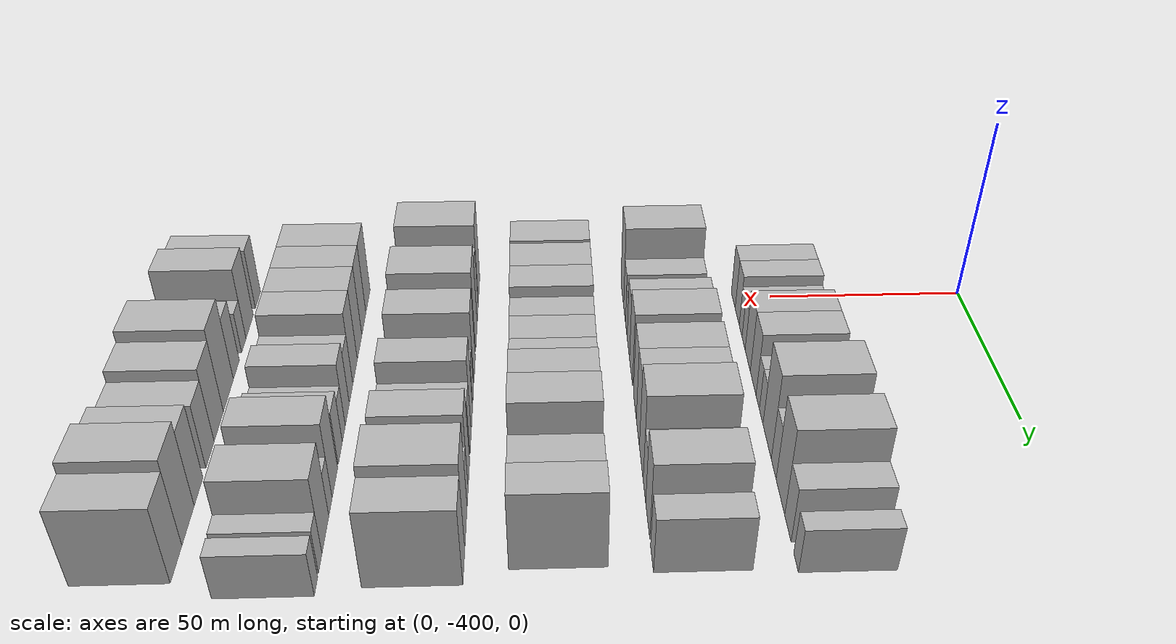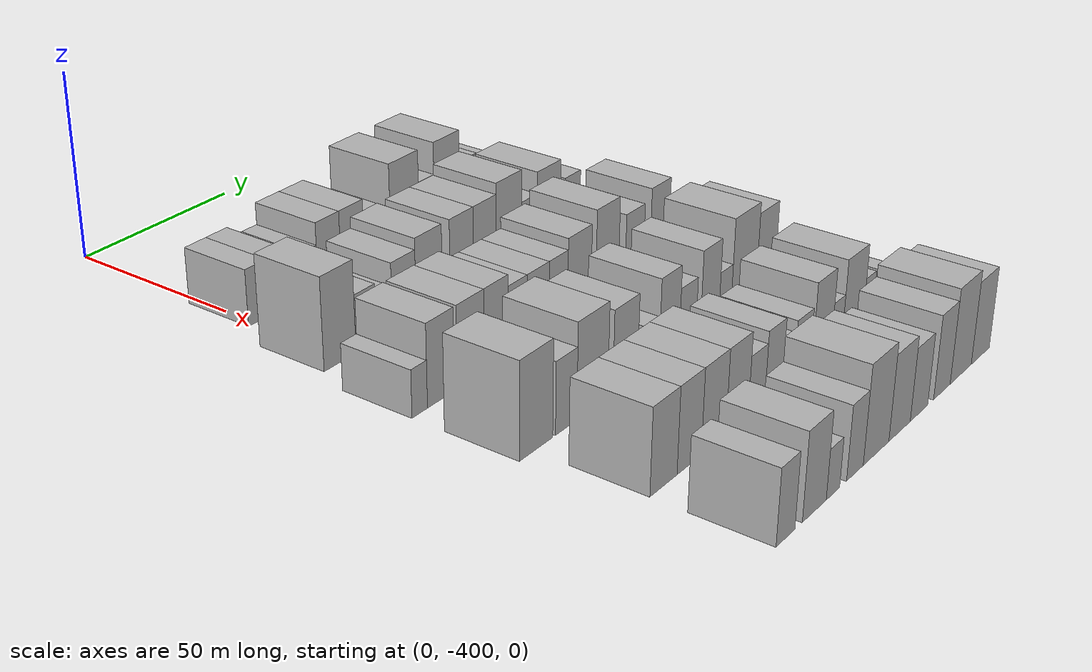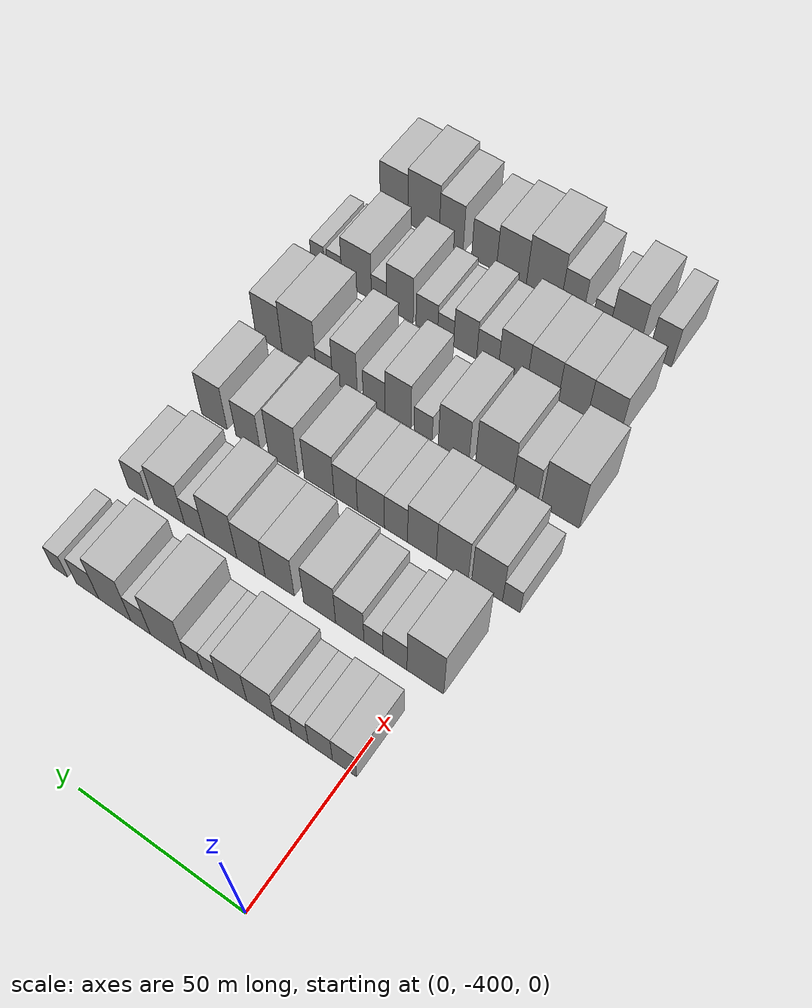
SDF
<sdf version="1.6">
 <world name="default">
  <model name="building_13">
   <static>1</static>
   <pose>50.0000 -398.7498 0 0.000000 0.000000 0.000000</pose>
   <link name="link">
    <pose>0 0 7.50 0 0 0</pose>
    <collision name="collision"><geometry><box><size>20.0000 7.1554 15.0000</size></box></geometry></collision>
    <visual name="visual">
     <cast_shadows>0</cast_shadows>
     <geometry><box><size>20.0000 7.1554 15.0000</size></box></geometry>
     <material>
      <script>
       <uri>model://HANNAS_wall/materials/scripts</uri>
       <uri>model://HANNAS_wall/materials/textures</uri>
       <name>vrc/HANNAS_wall</name>
      </script>
     </material>
    </visual>
   </link>
  </model>
  <model name="building_14">
   <static>1</static>
   <pose>50.0000 -391.5810 0 0.000000 0.000000 0.000000</pose>
   <link name="link">
    <pose>0 0 7.50 0 0 0</pose>
    <collision name="collision"><geometry><box><size>20.0000 7.1822 15.0000</size></box></geometry></collision>
    <visual name="visual">
     <cast_shadows>0</cast_shadows>
     <geometry><box><size>20.0000 7.1822 15.0000</size></box></geometry>
     <material>
      <script>
       <uri>model://HANNAS_wall/materials/scripts</uri>
       <uri>model://HANNAS_wall/materials/textures</uri>
       <name>vrc/HANNAS_wall</name>
      </script>
     </material>
    </visual>
   </link>
  </model>
  <model name="building_15">
   <static>1</static>
   <pose>50.0000 -385.5273 0 0.000000 0.000000 0.000000</pose>
   <link name="link">
    <pose>0 0 6.00 0 0 0</pose>
    <collision name="collision"><geometry><box><size>20.0000 4.9251 12.0000</size></box></geometry></collision>
    <visual name="visual">
     <cast_shadows>0</cast_shadows>
     <geometry><box><size>20.0000 4.9251 12.0000</size></box></geometry>
     <material>
      <script>
       <uri>model://HANNAS_wall/materials/scripts</uri>
       <uri>model://HANNAS_wall/materials/textures</uri>
       <name>vrc/HANNAS_wall</name>
      </script>
     </material>
    </visual>
   </link>
  </model>
  <model name="building_16">
   <static>1</static>
   <pose>50.0000 -380.4521 0 0.000000 0.000000 0.000000</pose>
   <link name="link">
    <pose>0 0 6.00 0 0 0</pose>
    <collision name="collision"><geometry><box><size>20.0000 5.2253 12.0000</size></box></geometry></collision>
    <visual name="visual">
     <cast_shadows>0</cast_shadows>
     <geometry><box><size>20.0000 5.2253 12.0000</size></box></geometry>
     <material>
      <script>
       <uri>model://HANNAS_wall/materials/scripts</uri>
       <uri>model://HANNAS_wall/materials/textures</uri>
       <name>vrc/HANNAS_wall</name>
      </script>
     </material>
    </visual>
   </link>
  </model>
  <model name="building_17">
   <static>1</static>
   <pose>50.0000 -373.5593 0 0.000000 0.000000 0.000000</pose>
   <link name="link">
    <pose>0 0 9.00 0 0 0</pose>
    <collision name="collision"><geometry><box><size>20.0000 8.5604 18.0000</size></box></geometry></collision>
    <visual name="visual">
     <cast_shadows>0</cast_shadows>
     <geometry><box><size>20.0000 8.5604 18.0000</size></box></geometry>
     <material>
      <script>
       <uri>model://HANNAS_wall/materials/scripts</uri>
       <uri>model://HANNAS_wall/materials/textures</uri>
       <name>vrc/HANNAS_wall</name>
      </script>
     </material>
    </visual>
   </link>
  </model>
  <model name="building_18">
   <static>1</static>
   <pose>50.0000 -364.8369 0 0.000000 0.000000 0.000000</pose>
   <link name="link">
    <pose>0 0 9.00 0 0 0</pose>
    <collision name="collision"><geometry><box><size>20.0000 8.8844 18.0000</size></box></geometry></collision>
    <visual name="visual">
     <cast_shadows>0</cast_shadows>
     <geometry><box><size>20.0000 8.8844 18.0000</size></box></geometry>
     <material>
      <script>
       <uri>model://HANNAS_wall/materials/scripts</uri>
       <uri>model://HANNAS_wall/materials/textures</uri>
       <name>vrc/HANNAS_wall</name>
      </script>
     </material>
    </visual>
   </link>
  </model>
  <model name="building_19">
   <static>1</static>
   <pose>50.0000 -357.9122 0 0.000000 0.000000 0.000000</pose>
   <link name="link">
    <pose>0 0 6.00 0 0 0</pose>
    <collision name="collision"><geometry><box><size>20.0000 4.9650 12.0000</size></box></geometry></collision>
    <visual name="visual">
     <cast_shadows>0</cast_shadows>
     <geometry><box><size>20.0000 4.9650 12.0000</size></box></geometry>
     <material>
      <script>
       <uri>model://HANNAS_wall/materials/scripts</uri>
       <uri>model://HANNAS_wall/materials/textures</uri>
       <name>vrc/HANNAS_wall</name>
      </script>
     </material>
    </visual>
   </link>
  </model>
  <model name="building_20">
   <static>1</static>
   <pose>50.0000 -352.7772 0 0.000000 0.000000 0.000000</pose>
   <link name="link">
    <pose>0 0 6.00 0 0 0</pose>
    <collision name="collision"><geometry><box><size>20.0000 5.3050 12.0000</size></box></geometry></collision>
    <visual name="visual">
     <cast_shadows>0</cast_shadows>
     <geometry><box><size>20.0000 5.3050 12.0000</size></box></geometry>
     <material>
      <script>
       <uri>model://HANNAS_wall/materials/scripts</uri>
       <uri>model://HANNAS_wall/materials/textures</uri>
       <name>vrc/HANNAS_wall</name>
      </script>
     </material>
    </visual>
   </link>
  </model>
  <model name="building_21">
   <static>1</static>
   <pose>50.0000 -344.3734 0 0.000000 0.000000 0.000000</pose>
   <link name="link">
    <pose>0 0 12.00 0 0 0</pose>
    <collision name="collision"><geometry><box><size>20.0000 11.5025 24.0000</size></box></geometry></collision>
    <visual name="visual">
     <cast_shadows>0</cast_shadows>
     <geometry><box><size>20.0000 11.5025 24.0000</size></box></geometry>
     <material>
      <script>
       <uri>model://HANNAS_wall/materials/scripts</uri>
       <uri>model://HANNAS_wall/materials/textures</uri>
       <name>vrc/HANNAS_wall</name>
      </script>
     </material>
    </visual>
   </link>
  </model>
  <model name="building_22">
   <static>1</static>
   <pose>50.0000 -335.4424 0 0.000000 0.000000 0.000000</pose>
   <link name="link">
    <pose>0 0 7.50 0 0 0</pose>
    <collision name="collision"><geometry><box><size>20.0000 6.3595 15.0000</size></box></geometry></collision>
    <visual name="visual">
     <cast_shadows>0</cast_shadows>
     <geometry><box><size>20.0000 6.3595 15.0000</size></box></geometry>
     <material>
      <script>
       <uri>model://HANNAS_wall/materials/scripts</uri>
       <uri>model://HANNAS_wall/materials/textures</uri>
       <name>vrc/HANNAS_wall</name>
      </script>
     </material>
    </visual>
   </link>
  </model>
  <model name="building_23">
   <static>1</static>
   <pose>50.0000 -326.9030 0 0.000000 0.000000 0.000000</pose>
   <link name="link">
    <pose>0 0 12.00 0 0 0</pose>
    <collision name="collision"><geometry><box><size>20.0000 10.7193 24.0000</size></box></geometry></collision>
    <visual name="visual">
     <cast_shadows>0</cast_shadows>
     <geometry><box><size>20.0000 10.7193 24.0000</size></box></geometry>
     <material>
      <script>
       <uri>model://HANNAS_wall/materials/scripts</uri>
       <uri>model://HANNAS_wall/materials/textures</uri>
       <name>vrc/HANNAS_wall</name>
      </script>
     </material>
    </visual>
   </link>
  </model>
  <model name="building_24">
   <static>1</static>
   <pose>50.0000 -317.8002 0 0.000000 0.000000 0.000000</pose>
   <link name="link">
    <pose>0 0 7.50 0 0 0</pose>
    <collision name="collision"><geometry><box><size>20.0000 7.4862 15.0000</size></box></geometry></collision>
    <visual name="visual">
     <cast_shadows>0</cast_shadows>
     <geometry><box><size>20.0000 7.4862 15.0000</size></box></geometry>
     <material>
      <script>
       <uri>model://HANNAS_wall/materials/scripts</uri>
       <uri>model://HANNAS_wall/materials/textures</uri>
       <name>vrc/HANNAS_wall</name>
      </script>
     </material>
    </visual>
   </link>
  </model>
  <model name="building_25">
   <static>1</static>
   <pose>50.0000 -308.4729 0 0.000000 0.000000 0.000000</pose>
   <link name="link">
    <pose>0 0 6.00 0 0 0</pose>
    <collision name="collision"><geometry><box><size>20.0000 5.1685 12.0000</size></box></geometry></collision>
    <visual name="visual">
     <cast_shadows>0</cast_shadows>
     <geometry><box><size>20.0000 5.1685 12.0000</size></box></geometry>
     <material>
      <script>
       <uri>model://HANNAS_wall/materials/scripts</uri>
       <uri>model://HANNAS_wall/materials/textures</uri>
       <name>vrc/HANNAS_wall</name>
      </script>
     </material>
    </visual>
   </link>
  </model>
  <model name="building_129">
   <static>1</static>
   <pose>79.0000 -402.3320 0 0.000000 0.000000 0.000000</pose>
   <link name="link">
    <pose>0 0 12.00 0 0 0</pose>
    <collision name="collision"><geometry><box><size>20.0000 10.9451 24.0000</size></box></geometry></collision>
    <visual name="visual">
     <cast_shadows>0</cast_shadows>
     <geometry><box><size>20.0000 10.9451 24.0000</size></box></geometry>
     <material>
      <script>
       <uri>model://HANNAS_wall/materials/scripts</uri>
       <uri>model://HANNAS_wall/materials/textures</uri>
       <name>vrc/HANNAS_wall</name>
      </script>
     </material>
    </visual>
   </link>
  </model>
  <model name="building_130">
   <static>1</static>
   <pose>79.0000 -393.2459 0 0.000000 0.000000 0.000000</pose>
   <link name="link">
    <pose>0 0 7.50 0 0 0</pose>
    <collision name="collision"><geometry><box><size>20.0000 7.2270 15.0000</size></box></geometry></collision>
    <visual name="visual">
     <cast_shadows>0</cast_shadows>
     <geometry><box><size>20.0000 7.2270 15.0000</size></box></geometry>
     <material>
      <script>
       <uri>model://HANNAS_wall/materials/scripts</uri>
       <uri>model://HANNAS_wall/materials/textures</uri>
       <name>vrc/HANNAS_wall</name>
      </script>
     </material>
    </visual>
   </link>
  </model>
  <model name="building_131">
   <static>1</static>
   <pose>79.0000 -386.7211 0 0.000000 0.000000 0.000000</pose>
   <link name="link">
    <pose>0 0 6.00 0 0 0</pose>
    <collision name="collision"><geometry><box><size>20.0000 5.8226 12.0000</size></box></geometry></collision>
    <visual name="visual">
     <cast_shadows>0</cast_shadows>
     <geometry><box><size>20.0000 5.8226 12.0000</size></box></geometry>
     <material>
      <script>
       <uri>model://HANNAS_wall/materials/scripts</uri>
       <uri>model://HANNAS_wall/materials/textures</uri>
       <name>vrc/HANNAS_wall</name>
      </script>
     </material>
    </visual>
   </link>
  </model>
  <model name="building_132">
   <static>1</static>
   <pose>79.0000 -379.4180 0 0.000000 0.000000 0.000000</pose>
   <link name="link">
    <pose>0 0 9.00 0 0 0</pose>
    <collision name="collision"><geometry><box><size>20.0000 8.7837 18.0000</size></box></geometry></collision>
    <visual name="visual">
     <cast_shadows>0</cast_shadows>
     <geometry><box><size>20.0000 8.7837 18.0000</size></box></geometry>
     <material>
      <script>
       <uri>model://HANNAS_wall/materials/scripts</uri>
       <uri>model://HANNAS_wall/materials/textures</uri>
       <name>vrc/HANNAS_wall</name>
      </script>
     </material>
    </visual>
   </link>
  </model>
  <model name="building_133">
   <static>1</static>
   <pose>79.0000 -370.0226 0 0.000000 0.000000 0.000000</pose>
   <link name="link">
    <pose>0 0 10.50 0 0 0</pose>
    <collision name="collision"><geometry><box><size>20.0000 10.0070 21.0000</size></box></geometry></collision>
    <visual name="visual">
     <cast_shadows>0</cast_shadows>
     <geometry><box><size>20.0000 10.0070 21.0000</size></box></geometry>
     <material>
      <script>
       <uri>model://HANNAS_wall/materials/scripts</uri>
       <uri>model://HANNAS_wall/materials/textures</uri>
       <name>vrc/HANNAS_wall</name>
      </script>
     </material>
    </visual>
   </link>
  </model>
  <model name="building_134">
   <static>1</static>
   <pose>79.0000 -357.3639 0 0.000000 0.000000 0.000000</pose>
   <link name="link">
    <pose>0 0 10.50 0 0 0</pose>
    <collision name="collision"><geometry><box><size>20.0000 9.3104 21.0000</size></box></geometry></collision>
    <visual name="visual">
     <cast_shadows>0</cast_shadows>
     <geometry><box><size>20.0000 9.3104 21.0000</size></box></geometry>
     <material>
      <script>
       <uri>model://HANNAS_wall/materials/scripts</uri>
       <uri>model://HANNAS_wall/materials/textures</uri>
       <name>vrc/HANNAS_wall</name>
      </script>
     </material>
    </visual>
   </link>
  </model>
  <model name="building_135">
   <static>1</static>
   <pose>79.0000 -348.0920 0 0.000000 0.000000 0.000000</pose>
   <link name="link">
    <pose>0 0 10.50 0 0 0</pose>
    <collision name="collision"><geometry><box><size>20.0000 9.2333 21.0000</size></box></geometry></collision>
    <visual name="visual">
     <cast_shadows>0</cast_shadows>
     <geometry><box><size>20.0000 9.2333 21.0000</size></box></geometry>
     <material>
      <script>
       <uri>model://HANNAS_wall/materials/scripts</uri>
       <uri>model://HANNAS_wall/materials/textures</uri>
       <name>vrc/HANNAS_wall</name>
      </script>
     </material>
    </visual>
   </link>
  </model>
  <model name="building_136">
   <static>1</static>
   <pose>79.0000 -338.1933 0 0.000000 0.000000 0.000000</pose>
   <link name="link">
    <pose>0 0 12.00 0 0 0</pose>
    <collision name="collision"><geometry><box><size>20.0000 10.5641 24.0000</size></box></geometry></collision>
    <visual name="visual">
     <cast_shadows>0</cast_shadows>
     <geometry><box><size>20.0000 10.5641 24.0000</size></box></geometry>
     <material>
      <script>
       <uri>model://HANNAS_wall/materials/scripts</uri>
       <uri>model://HANNAS_wall/materials/textures</uri>
       <name>vrc/HANNAS_wall</name>
      </script>
     </material>
    </visual>
   </link>
  </model>
  <model name="building_137">
   <static>1</static>
   <pose>79.0000 -329.5015 0 0.000000 0.000000 0.000000</pose>
   <link name="link">
    <pose>0 0 7.50 0 0 0</pose>
    <collision name="collision"><geometry><box><size>20.0000 6.8196 15.0000</size></box></geometry></collision>
    <visual name="visual">
     <cast_shadows>0</cast_shadows>
     <geometry><box><size>20.0000 6.8196 15.0000</size></box></geometry>
     <material>
      <script>
       <uri>model://HANNAS_wall/materials/scripts</uri>
       <uri>model://HANNAS_wall/materials/textures</uri>
       <name>vrc/HANNAS_wall</name>
      </script>
     </material>
    </visual>
   </link>
  </model>
  <model name="building_138">
   <static>1</static>
   <pose>79.0000 -320.9456 0 0.000000 0.000000 0.000000</pose>
   <link name="link">
    <pose>0 0 10.50 0 0 0</pose>
    <collision name="collision"><geometry><box><size>20.0000 10.2923 21.0000</size></box></geometry></collision>
    <visual name="visual">
     <cast_shadows>0</cast_shadows>
     <geometry><box><size>20.0000 10.2923 21.0000</size></box></geometry>
     <material>
      <script>
       <uri>model://HANNAS_wall/materials/scripts</uri>
       <uri>model://HANNAS_wall/materials/textures</uri>
       <name>vrc/HANNAS_wall</name>
      </script>
     </material>
    </visual>
   </link>
  </model>
  <model name="building_139">
   <static>1</static>
   <pose>79.0000 -310.3214 0 0.000000 0.000000 0.000000</pose>
   <link name="link">
    <pose>0 0 7.50 0 0 0</pose>
    <collision name="collision"><geometry><box><size>20.0000 6.9561 15.0000</size></box></geometry></collision>
    <visual name="visual">
     <cast_shadows>0</cast_shadows>
     <geometry><box><size>20.0000 6.9561 15.0000</size></box></geometry>
     <material>
      <script>
       <uri>model://HANNAS_wall/materials/scripts</uri>
       <uri>model://HANNAS_wall/materials/textures</uri>
       <name>vrc/HANNAS_wall</name>
      </script>
     </material>
    </visual>
   </link>
  </model>
  <model name="building_249">
   <static>1</static>
   <pose>108.0000 -409.0052 0 0.000000 0.000000 0.000000</pose>
   <link name="link">
    <pose>0 0 6.00 0 0 0</pose>
    <collision name="collision"><geometry><box><size>20.0000 5.3090 12.0000</size></box></geometry></collision>
    <visual name="visual">
     <cast_shadows>0</cast_shadows>
     <geometry><box><size>20.0000 5.3090 12.0000</size></box></geometry>
     <material>
      <script>
       <uri>model://HANNAS_wall/materials/scripts</uri>
       <uri>model://HANNAS_wall/materials/textures</uri>
       <name>vrc/HANNAS_wall</name>
      </script>
     </material>
    </visual>
   </link>
  </model>
  <model name="building_250">
   <static>1</static>
   <pose>108.0000 -401.6412 0 0.000000 0.000000 0.000000</pose>
   <link name="link">
    <pose>0 0 10.50 0 0 0</pose>
    <collision name="collision"><geometry><box><size>20.0000 9.4190 21.0000</size></box></geometry></collision>
    <visual name="visual">
     <cast_shadows>0</cast_shadows>
     <geometry><box><size>20.0000 9.4190 21.0000</size></box></geometry>
     <material>
      <script>
       <uri>model://HANNAS_wall/materials/scripts</uri>
       <uri>model://HANNAS_wall/materials/textures</uri>
       <name>vrc/HANNAS_wall</name>
      </script>
     </material>
    </visual>
   </link>
  </model>
  <model name="building_251">
   <static>1</static>
   <pose>108.0000 -391.0073 0 0.000000 0.000000 0.000000</pose>
   <link name="link">
    <pose>0 0 10.50 0 0 0</pose>
    <collision name="collision"><geometry><box><size>20.0000 9.8489 21.0000</size></box></geometry></collision>
    <visual name="visual">
     <cast_shadows>0</cast_shadows>
     <geometry><box><size>20.0000 9.8489 21.0000</size></box></geometry>
     <material>
      <script>
       <uri>model://HANNAS_wall/materials/scripts</uri>
       <uri>model://HANNAS_wall/materials/textures</uri>
       <name>vrc/HANNAS_wall</name>
      </script>
     </material>
    </visual>
   </link>
  </model>
  <model name="building_252">
   <static>1</static>
   <pose>108.0000 -381.5702 0 0.000000 0.000000 0.000000</pose>
   <link name="link">
    <pose>0 0 10.50 0 0 0</pose>
    <collision name="collision"><geometry><box><size>20.0000 9.0252 21.0000</size></box></geometry></collision>
    <visual name="visual">
     <cast_shadows>0</cast_shadows>
     <geometry><box><size>20.0000 9.0252 21.0000</size></box></geometry>
     <material>
      <script>
       <uri>model://HANNAS_wall/materials/scripts</uri>
       <uri>model://HANNAS_wall/materials/textures</uri>
       <name>vrc/HANNAS_wall</name>
      </script>
     </material>
    </visual>
   </link>
  </model>
  <model name="building_253">
   <static>1</static>
   <pose>108.0000 -373.3966 0 0.000000 0.000000 0.000000</pose>
   <link name="link">
    <pose>0 0 9.00 0 0 0</pose>
    <collision name="collision"><geometry><box><size>20.0000 7.3220 18.0000</size></box></geometry></collision>
    <visual name="visual">
     <cast_shadows>0</cast_shadows>
     <geometry><box><size>20.0000 7.3220 18.0000</size></box></geometry>
     <material>
      <script>
       <uri>model://HANNAS_wall/materials/scripts</uri>
       <uri>model://HANNAS_wall/materials/textures</uri>
       <name>vrc/HANNAS_wall</name>
      </script>
     </material>
    </visual>
   </link>
  </model>
  <model name="building_254">
   <static>1</static>
   <pose>108.0000 -365.3991 0 0.000000 0.000000 0.000000</pose>
   <link name="link">
    <pose>0 0 9.00 0 0 0</pose>
    <collision name="collision"><geometry><box><size>20.0000 8.6732 18.0000</size></box></geometry></collision>
    <visual name="visual">
     <cast_shadows>0</cast_shadows>
     <geometry><box><size>20.0000 8.6732 18.0000</size></box></geometry>
     <material>
      <script>
       <uri>model://HANNAS_wall/materials/scripts</uri>
       <uri>model://HANNAS_wall/materials/textures</uri>
       <name>vrc/HANNAS_wall</name>
      </script>
     </material>
    </visual>
   </link>
  </model>
  <model name="building_255">
   <static>1</static>
   <pose>108.0000 -357.2588 0 0.000000 0.000000 0.000000</pose>
   <link name="link">
    <pose>0 0 9.00 0 0 0</pose>
    <collision name="collision"><geometry><box><size>20.0000 7.6074 18.0000</size></box></geometry></collision>
    <visual name="visual">
     <cast_shadows>0</cast_shadows>
     <geometry><box><size>20.0000 7.6074 18.0000</size></box></geometry>
     <material>
      <script>
       <uri>model://HANNAS_wall/materials/scripts</uri>
       <uri>model://HANNAS_wall/materials/textures</uri>
       <name>vrc/HANNAS_wall</name>
      </script>
     </material>
    </visual>
   </link>
  </model>
  <model name="building_256">
   <static>1</static>
   <pose>108.0000 -348.5468 0 0.000000 0.000000 0.000000</pose>
   <link name="link">
    <pose>0 0 10.50 0 0 0</pose>
    <collision name="collision"><geometry><box><size>20.0000 9.8166 21.0000</size></box></geometry></collision>
    <visual name="visual">
     <cast_shadows>0</cast_shadows>
     <geometry><box><size>20.0000 9.8166 21.0000</size></box></geometry>
     <material>
      <script>
       <uri>model://HANNAS_wall/materials/scripts</uri>
       <uri>model://HANNAS_wall/materials/textures</uri>
       <name>vrc/HANNAS_wall</name>
      </script>
     </material>
    </visual>
   </link>
  </model>
  <model name="building_257">
   <static>1</static>
   <pose>108.0000 -336.6874 0 0.000000 0.000000 0.000000</pose>
   <link name="link">
    <pose>0 0 12.00 0 0 0</pose>
    <collision name="collision"><geometry><box><size>20.0000 9.9022 24.0000</size></box></geometry></collision>
    <visual name="visual">
     <cast_shadows>0</cast_shadows>
     <geometry><box><size>20.0000 9.9022 24.0000</size></box></geometry>
     <material>
      <script>
       <uri>model://HANNAS_wall/materials/scripts</uri>
       <uri>model://HANNAS_wall/materials/textures</uri>
       <name>vrc/HANNAS_wall</name>
      </script>
     </material>
    </visual>
   </link>
  </model>
  <model name="building_258">
   <static>1</static>
   <pose>108.0000 -324.5837 0 0.000000 0.000000 0.000000</pose>
   <link name="link">
    <pose>0 0 9.00 0 0 0</pose>
    <collision name="collision"><geometry><box><size>20.0000 8.3051 18.0000</size></box></geometry></collision>
    <visual name="visual">
     <cast_shadows>0</cast_shadows>
     <geometry><box><size>20.0000 8.3051 18.0000</size></box></geometry>
     <material>
      <script>
       <uri>model://HANNAS_wall/materials/scripts</uri>
       <uri>model://HANNAS_wall/materials/textures</uri>
       <name>vrc/HANNAS_wall</name>
      </script>
     </material>
    </visual>
   </link>
  </model>
  <model name="building_259">
   <static>1</static>
   <pose>108.0000 -313.0151 0 0.000000 0.000000 0.000000</pose>
   <link name="link">
    <pose>0 0 10.50 0 0 0</pose>
    <collision name="collision"><geometry><box><size>20.0000 8.8322 21.0000</size></box></geometry></collision>
    <visual name="visual">
     <cast_shadows>0</cast_shadows>
     <geometry><box><size>20.0000 8.8322 21.0000</size></box></geometry>
     <material>
      <script>
       <uri>model://HANNAS_wall/materials/scripts</uri>
       <uri>model://HANNAS_wall/materials/textures</uri>
       <name>vrc/HANNAS_wall</name>
      </script>
     </material>
    </visual>
   </link>
  </model>
  <model name="building_367">
   <static>1</static>
   <pose>137.0000 -405.7614 0 0.000000 0.000000 0.000000</pose>
   <link name="link">
    <pose>0 0 12.00 0 0 0</pose>
    <collision name="collision"><geometry><box><size>20.0000 11.8166 24.0000</size></box></geometry></collision>
    <visual name="visual">
     <cast_shadows>0</cast_shadows>
     <geometry><box><size>20.0000 11.8166 24.0000</size></box></geometry>
     <material>
      <script>
       <uri>model://HANNAS_wall/materials/scripts</uri>
       <uri>model://HANNAS_wall/materials/textures</uri>
       <name>vrc/HANNAS_wall</name>
      </script>
     </material>
    </visual>
   </link>
  </model>
  <model name="building_368">
   <static>1</static>
   <pose>137.0000 -394.9023 0 0.000000 0.000000 0.000000</pose>
   <link name="link">
    <pose>0 0 9.00 0 0 0</pose>
    <collision name="collision"><geometry><box><size>20.0000 7.9016 18.0000</size></box></geometry></collision>
    <visual name="visual">
     <cast_shadows>0</cast_shadows>
     <geometry><box><size>20.0000 7.9016 18.0000</size></box></geometry>
     <material>
      <script>
       <uri>model://HANNAS_wall/materials/scripts</uri>
       <uri>model://HANNAS_wall/materials/textures</uri>
       <name>vrc/HANNAS_wall</name>
      </script>
     </material>
    </visual>
   </link>
  </model>
  <model name="building_369">
   <static>1</static>
   <pose>137.0000 -385.0143 0 0.000000 0.000000 0.000000</pose>
   <link name="link">
    <pose>0 0 12.00 0 0 0</pose>
    <collision name="collision"><geometry><box><size>20.0000 11.8744 24.0000</size></box></geometry></collision>
    <visual name="visual">
     <cast_shadows>0</cast_shadows>
     <geometry><box><size>20.0000 11.8744 24.0000</size></box></geometry>
     <material>
      <script>
       <uri>model://HANNAS_wall/materials/scripts</uri>
       <uri>model://HANNAS_wall/materials/textures</uri>
       <name>vrc/HANNAS_wall</name>
      </script>
     </material>
    </visual>
   </link>
  </model>
  <model name="building_370">
   <static>1</static>
   <pose>137.0000 -372.1218 0 0.000000 0.000000 0.000000</pose>
   <link name="link">
    <pose>0 0 10.50 0 0 0</pose>
    <collision name="collision"><geometry><box><size>20.0000 9.9107 21.0000</size></box></geometry></collision>
    <visual name="visual">
     <cast_shadows>0</cast_shadows>
     <geometry><box><size>20.0000 9.9107 21.0000</size></box></geometry>
     <material>
      <script>
       <uri>model://HANNAS_wall/materials/scripts</uri>
       <uri>model://HANNAS_wall/materials/textures</uri>
       <name>vrc/HANNAS_wall</name>
      </script>
     </material>
    </visual>
   </link>
  </model>
  <model name="building_371">
   <static>1</static>
   <pose>137.0000 -362.1764 0 0.000000 0.000000 0.000000</pose>
   <link name="link">
    <pose>0 0 6.00 0 0 0</pose>
    <collision name="collision"><geometry><box><size>20.0000 5.9801 12.0000</size></box></geometry></collision>
    <visual name="visual">
     <cast_shadows>0</cast_shadows>
     <geometry><box><size>20.0000 5.9801 12.0000</size></box></geometry>
     <material>
      <script>
       <uri>model://HANNAS_wall/materials/scripts</uri>
       <uri>model://HANNAS_wall/materials/textures</uri>
       <name>vrc/HANNAS_wall</name>
      </script>
     </material>
    </visual>
   </link>
  </model>
  <model name="building_372">
   <static>1</static>
   <pose>137.0000 -353.9035 0 0.000000 0.000000 0.000000</pose>
   <link name="link">
    <pose>0 0 10.50 0 0 0</pose>
    <collision name="collision"><geometry><box><size>20.0000 8.5658 21.0000</size></box></geometry></collision>
    <visual name="visual">
     <cast_shadows>0</cast_shadows>
     <geometry><box><size>20.0000 8.5658 21.0000</size></box></geometry>
     <material>
      <script>
       <uri>model://HANNAS_wall/materials/scripts</uri>
       <uri>model://HANNAS_wall/materials/textures</uri>
       <name>vrc/HANNAS_wall</name>
      </script>
     </material>
    </visual>
   </link>
  </model>
  <model name="building_373">
   <static>1</static>
   <pose>137.0000 -345.9378 0 0.000000 0.000000 0.000000</pose>
   <link name="link">
    <pose>0 0 7.50 0 0 0</pose>
    <collision name="collision"><geometry><box><size>20.0000 7.3655 15.0000</size></box></geometry></collision>
    <visual name="visual">
     <cast_shadows>0</cast_shadows>
     <geometry><box><size>20.0000 7.3655 15.0000</size></box></geometry>
     <material>
      <script>
       <uri>model://HANNAS_wall/materials/scripts</uri>
       <uri>model://HANNAS_wall/materials/textures</uri>
       <name>vrc/HANNAS_wall</name>
      </script>
     </material>
    </visual>
   </link>
  </model>
  <model name="building_374">
   <static>1</static>
   <pose>137.0000 -336.0486 0 0.000000 0.000000 0.000000</pose>
   <link name="link">
    <pose>0 0 10.50 0 0 0</pose>
    <collision name="collision"><geometry><box><size>20.0000 8.4129 21.0000</size></box></geometry></collision>
    <visual name="visual">
     <cast_shadows>0</cast_shadows>
     <geometry><box><size>20.0000 8.4129 21.0000</size></box></geometry>
     <material>
      <script>
       <uri>model://HANNAS_wall/materials/scripts</uri>
       <uri>model://HANNAS_wall/materials/textures</uri>
       <name>vrc/HANNAS_wall</name>
      </script>
     </material>
    </visual>
   </link>
  </model>
  <model name="building_375">
   <static>1</static>
   <pose>137.0000 -329.0054 0 0.000000 0.000000 0.000000</pose>
   <link name="link">
    <pose>0 0 6.00 0 0 0</pose>
    <collision name="collision"><geometry><box><size>20.0000 5.6733 12.0000</size></box></geometry></collision>
    <visual name="visual">
     <cast_shadows>0</cast_shadows>
     <geometry><box><size>20.0000 5.6733 12.0000</size></box></geometry>
     <material>
      <script>
       <uri>model://HANNAS_wall/materials/scripts</uri>
       <uri>model://HANNAS_wall/materials/textures</uri>
       <name>vrc/HANNAS_wall</name>
      </script>
     </material>
    </visual>
   </link>
  </model>
  <model name="building_376">
   <static>1</static>
   <pose>137.0000 -320.1951 0 0.000000 0.000000 0.000000</pose>
   <link name="link">
    <pose>0 0 12.00 0 0 0</pose>
    <collision name="collision"><geometry><box><size>20.0000 11.9473 24.0000</size></box></geometry></collision>
    <visual name="visual">
     <cast_shadows>0</cast_shadows>
     <geometry><box><size>20.0000 11.9473 24.0000</size></box></geometry>
     <material>
      <script>
       <uri>model://HANNAS_wall/materials/scripts</uri>
       <uri>model://HANNAS_wall/materials/textures</uri>
       <name>vrc/HANNAS_wall</name>
      </script>
     </material>
    </visual>
   </link>
  </model>
  <model name="building_377">
   <static>1</static>
   <pose>137.0000 -309.5522 0 0.000000 0.000000 0.000000</pose>
   <link name="link">
    <pose>0 0 10.50 0 0 0</pose>
    <collision name="collision"><geometry><box><size>20.0000 9.3387 21.0000</size></box></geometry></collision>
    <visual name="visual">
     <cast_shadows>0</cast_shadows>
     <geometry><box><size>20.0000 9.3387 21.0000</size></box></geometry>
     <material>
      <script>
       <uri>model://HANNAS_wall/materials/scripts</uri>
       <uri>model://HANNAS_wall/materials/textures</uri>
       <name>vrc/HANNAS_wall</name>
      </script>
     </material>
    </visual>
   </link>
  </model>
  <model name="building_481">
   <static>1</static>
   <pose>166.0000 -401.5650 0 0.000000 0.000000 0.000000</pose>
   <link name="link">
    <pose>0 0 10.50 0 0 0</pose>
    <collision name="collision"><geometry><box><size>20.0000 10.2276 21.0000</size></box></geometry></collision>
    <visual name="visual">
     <cast_shadows>0</cast_shadows>
     <geometry><box><size>20.0000 10.2276 21.0000</size></box></geometry>
     <material>
      <script>
       <uri>model://HANNAS_wall/materials/scripts</uri>
       <uri>model://HANNAS_wall/materials/textures</uri>
       <name>vrc/HANNAS_wall</name>
      </script>
     </material>
    </visual>
   </link>
  </model>
  <model name="building_482">
   <static>1</static>
   <pose>166.0000 -391.7403 0 0.000000 0.000000 0.000000</pose>
   <link name="link">
    <pose>0 0 10.50 0 0 0</pose>
    <collision name="collision"><geometry><box><size>20.0000 9.4218 21.0000</size></box></geometry></collision>
    <visual name="visual">
     <cast_shadows>0</cast_shadows>
     <geometry><box><size>20.0000 9.4218 21.0000</size></box></geometry>
     <material>
      <script>
       <uri>model://HANNAS_wall/materials/scripts</uri>
       <uri>model://HANNAS_wall/materials/textures</uri>
       <name>vrc/HANNAS_wall</name>
      </script>
     </material>
    </visual>
   </link>
  </model>
  <model name="building_483">
   <static>1</static>
   <pose>166.0000 -382.0593 0 0.000000 0.000000 0.000000</pose>
   <link name="link">
    <pose>0 0 10.50 0 0 0</pose>
    <collision name="collision"><geometry><box><size>20.0000 9.9401 21.0000</size></box></geometry></collision>
    <visual name="visual">
     <cast_shadows>0</cast_shadows>
     <geometry><box><size>20.0000 9.9401 21.0000</size></box></geometry>
     <material>
      <script>
       <uri>model://HANNAS_wall/materials/scripts</uri>
       <uri>model://HANNAS_wall/materials/textures</uri>
       <name>vrc/HANNAS_wall</name>
      </script>
     </material>
    </visual>
   </link>
  </model>
  <model name="building_484">
   <static>1</static>
   <pose>166.0000 -372.4021 0 0.000000 0.000000 0.000000</pose>
   <link name="link">
    <pose>0 0 10.50 0 0 0</pose>
    <collision name="collision"><geometry><box><size>20.0000 9.3743 21.0000</size></box></geometry></collision>
    <visual name="visual">
     <cast_shadows>0</cast_shadows>
     <geometry><box><size>20.0000 9.3743 21.0000</size></box></geometry>
     <material>
      <script>
       <uri>model://HANNAS_wall/materials/scripts</uri>
       <uri>model://HANNAS_wall/materials/textures</uri>
       <name>vrc/HANNAS_wall</name>
      </script>
     </material>
    </visual>
   </link>
  </model>
  <model name="building_485">
   <static>1</static>
   <pose>166.0000 -364.1359 0 0.000000 0.000000 0.000000</pose>
   <link name="link">
    <pose>0 0 7.50 0 0 0</pose>
    <collision name="collision"><geometry><box><size>20.0000 7.1582 15.0000</size></box></geometry></collision>
    <visual name="visual">
     <cast_shadows>0</cast_shadows>
     <geometry><box><size>20.0000 7.1582 15.0000</size></box></geometry>
     <material>
      <script>
       <uri>model://HANNAS_wall/materials/scripts</uri>
       <uri>model://HANNAS_wall/materials/textures</uri>
       <name>vrc/HANNAS_wall</name>
      </script>
     </material>
    </visual>
   </link>
  </model>
  <model name="building_486">
   <static>1</static>
   <pose>166.0000 -356.6831 0 0.000000 0.000000 0.000000</pose>
   <link name="link">
    <pose>0 0 9.00 0 0 0</pose>
    <collision name="collision"><geometry><box><size>20.0000 7.7473 18.0000</size></box></geometry></collision>
    <visual name="visual">
     <cast_shadows>0</cast_shadows>
     <geometry><box><size>20.0000 7.7473 18.0000</size></box></geometry>
     <material>
      <script>
       <uri>model://HANNAS_wall/materials/scripts</uri>
       <uri>model://HANNAS_wall/materials/textures</uri>
       <name>vrc/HANNAS_wall</name>
      </script>
     </material>
    </visual>
   </link>
  </model>
  <model name="building_487">
   <static>1</static>
   <pose>166.0000 -350.0849 0 0.000000 0.000000 0.000000</pose>
   <link name="link">
    <pose>0 0 6.00 0 0 0</pose>
    <collision name="collision"><geometry><box><size>20.0000 5.4492 12.0000</size></box></geometry></collision>
    <visual name="visual">
     <cast_shadows>0</cast_shadows>
     <geometry><box><size>20.0000 5.4492 12.0000</size></box></geometry>
     <material>
      <script>
       <uri>model://HANNAS_wall/materials/scripts</uri>
       <uri>model://HANNAS_wall/materials/textures</uri>
       <name>vrc/HANNAS_wall</name>
      </script>
     </material>
    </visual>
   </link>
  </model>
  <model name="building_488">
   <static>1</static>
   <pose>166.0000 -343.6776 0 0.000000 0.000000 0.000000</pose>
   <link name="link">
    <pose>0 0 7.50 0 0 0</pose>
    <collision name="collision"><geometry><box><size>20.0000 7.3654 15.0000</size></box></geometry></collision>
    <visual name="visual">
     <cast_shadows>0</cast_shadows>
     <geometry><box><size>20.0000 7.3654 15.0000</size></box></geometry>
     <material>
      <script>
       <uri>model://HANNAS_wall/materials/scripts</uri>
       <uri>model://HANNAS_wall/materials/textures</uri>
       <name>vrc/HANNAS_wall</name>
      </script>
     </material>
    </visual>
   </link>
  </model>
  <model name="building_489">
   <static>1</static>
   <pose>166.0000 -334.4045 0 0.000000 0.000000 0.000000</pose>
   <link name="link">
    <pose>0 0 10.50 0 0 0</pose>
    <collision name="collision"><geometry><box><size>20.0000 9.1808 21.0000</size></box></geometry></collision>
    <visual name="visual">
     <cast_shadows>0</cast_shadows>
     <geometry><box><size>20.0000 9.1808 21.0000</size></box></geometry>
     <material>
      <script>
       <uri>model://HANNAS_wall/materials/scripts</uri>
       <uri>model://HANNAS_wall/materials/textures</uri>
       <name>vrc/HANNAS_wall</name>
      </script>
     </material>
    </visual>
   </link>
  </model>
  <model name="building_490">
   <static>1</static>
   <pose>166.0000 -327.1407 0 0.000000 0.000000 0.000000</pose>
   <link name="link">
    <pose>0 0 6.00 0 0 0</pose>
    <collision name="collision"><geometry><box><size>20.0000 5.3467 12.0000</size></box></geometry></collision>
    <visual name="visual">
     <cast_shadows>0</cast_shadows>
     <geometry><box><size>20.0000 5.3467 12.0000</size></box></geometry>
     <material>
      <script>
       <uri>model://HANNAS_wall/materials/scripts</uri>
       <uri>model://HANNAS_wall/materials/textures</uri>
       <name>vrc/HANNAS_wall</name>
      </script>
     </material>
    </visual>
   </link>
  </model>
  <model name="building_491">
   <static>1</static>
   <pose>166.0000 -319.2428 0 0.000000 0.000000 0.000000</pose>
   <link name="link">
    <pose>0 0 10.50 0 0 0</pose>
    <collision name="collision"><geometry><box><size>20.0000 10.4492 21.0000</size></box></geometry></collision>
    <visual name="visual">
     <cast_shadows>0</cast_shadows>
     <geometry><box><size>20.0000 10.4492 21.0000</size></box></geometry>
     <material>
      <script>
       <uri>model://HANNAS_wall/materials/scripts</uri>
       <uri>model://HANNAS_wall/materials/textures</uri>
       <name>vrc/HANNAS_wall</name>
      </script>
     </material>
    </visual>
   </link>
  </model>
  <model name="building_492">
   <static>1</static>
   <pose>166.0000 -311.4499 0 0.000000 0.000000 0.000000</pose>
   <link name="link">
    <pose>0 0 6.00 0 0 0</pose>
    <collision name="collision"><geometry><box><size>20.0000 5.1365 12.0000</size></box></geometry></collision>
    <visual name="visual">
     <cast_shadows>0</cast_shadows>
     <geometry><box><size>20.0000 5.1365 12.0000</size></box></geometry>
     <material>
      <script>
       <uri>model://HANNAS_wall/materials/scripts</uri>
       <uri>model://HANNAS_wall/materials/textures</uri>
       <name>vrc/HANNAS_wall</name>
      </script>
     </material>
    </visual>
   </link>
  </model>
  <model name="building_493">
   <static>1</static>
   <pose>166.0000 -305.4590 0 0.000000 0.000000 0.000000</pose>
   <link name="link">
    <pose>0 0 6.00 0 0 0</pose>
    <collision name="collision"><geometry><box><size>20.0000 4.8454 12.0000</size></box></geometry></collision>
    <visual name="visual">
     <cast_shadows>0</cast_shadows>
     <geometry><box><size>20.0000 4.8454 12.0000</size></box></geometry>
     <material>
      <script>
       <uri>model://HANNAS_wall/materials/scripts</uri>
       <uri>model://HANNAS_wall/materials/textures</uri>
       <name>vrc/HANNAS_wall</name>
      </script>
     </material>
    </visual>
   </link>
  </model>
  <model name="building_599">
   <static>1</static>
   <pose>195.0000 -403.0683 0 0.000000 0.000000 0.000000</pose>
   <link name="link">
    <pose>0 0 9.00 0 0 0</pose>
    <collision name="collision"><geometry><box><size>20.0000 7.4260 18.0000</size></box></geometry></collision>
    <visual name="visual">
     <cast_shadows>0</cast_shadows>
     <geometry><box><size>20.0000 7.4260 18.0000</size></box></geometry>
     <material>
      <script>
       <uri>model://HANNAS_wall/materials/scripts</uri>
       <uri>model://HANNAS_wall/materials/textures</uri>
       <name>vrc/HANNAS_wall</name>
      </script>
     </material>
    </visual>
   </link>
  </model>
  <model name="building_600">
   <static>1</static>
   <pose>195.0000 -391.4168 0 0.000000 0.000000 0.000000</pose>
   <link name="link">
    <pose>0 0 10.50 0 0 0</pose>
    <collision name="collision"><geometry><box><size>20.0000 9.8771 21.0000</size></box></geometry></collision>
    <visual name="visual">
     <cast_shadows>0</cast_shadows>
     <geometry><box><size>20.0000 9.8771 21.0000</size></box></geometry>
     <material>
      <script>
       <uri>model://HANNAS_wall/materials/scripts</uri>
       <uri>model://HANNAS_wall/materials/textures</uri>
       <name>vrc/HANNAS_wall</name>
      </script>
     </material>
    </visual>
   </link>
  </model>
  <model name="building_601">
   <static>1</static>
   <pose>195.0000 -383.6354 0 0.000000 0.000000 0.000000</pose>
   <link name="link">
    <pose>0 0 6.00 0 0 0</pose>
    <collision name="collision"><geometry><box><size>20.0000 5.6857 12.0000</size></box></geometry></collision>
    <visual name="visual">
     <cast_shadows>0</cast_shadows>
     <geometry><box><size>20.0000 5.6857 12.0000</size></box></geometry>
     <material>
      <script>
       <uri>model://HANNAS_wall/materials/scripts</uri>
       <uri>model://HANNAS_wall/materials/textures</uri>
       <name>vrc/HANNAS_wall</name>
      </script>
     </material>
    </visual>
   </link>
  </model>
  <model name="building_602">
   <static>1</static>
   <pose>195.0000 -374.1002 0 0.000000 0.000000 0.000000</pose>
   <link name="link">
    <pose>0 0 9.00 0 0 0</pose>
    <collision name="collision"><geometry><box><size>20.0000 7.3848 18.0000</size></box></geometry></collision>
    <visual name="visual">
     <cast_shadows>0</cast_shadows>
     <geometry><box><size>20.0000 7.3848 18.0000</size></box></geometry>
     <material>
      <script>
       <uri>model://HANNAS_wall/materials/scripts</uri>
       <uri>model://HANNAS_wall/materials/textures</uri>
       <name>vrc/HANNAS_wall</name>
      </script>
     </material>
    </visual>
   </link>
  </model>
  <model name="building_603">
   <static>1</static>
   <pose>195.0000 -364.5441 0 0.000000 0.000000 0.000000</pose>
   <link name="link">
    <pose>0 0 12.00 0 0 0</pose>
    <collision name="collision"><geometry><box><size>20.0000 11.7274 24.0000</size></box></geometry></collision>
    <visual name="visual">
     <cast_shadows>0</cast_shadows>
     <geometry><box><size>20.0000 11.7274 24.0000</size></box></geometry>
     <material>
      <script>
       <uri>model://HANNAS_wall/materials/scripts</uri>
       <uri>model://HANNAS_wall/materials/textures</uri>
       <name>vrc/HANNAS_wall</name>
      </script>
     </material>
    </visual>
   </link>
  </model>
  <model name="building_604">
   <static>1</static>
   <pose>195.0000 -353.5717 0 0.000000 0.000000 0.000000</pose>
   <link name="link">
    <pose>0 0 10.50 0 0 0</pose>
    <collision name="collision"><geometry><box><size>20.0000 10.2174 21.0000</size></box></geometry></collision>
    <visual name="visual">
     <cast_shadows>0</cast_shadows>
     <geometry><box><size>20.0000 10.2174 21.0000</size></box></geometry>
     <material>
      <script>
       <uri>model://HANNAS_wall/materials/scripts</uri>
       <uri>model://HANNAS_wall/materials/textures</uri>
       <name>vrc/HANNAS_wall</name>
      </script>
     </material>
    </visual>
   </link>
  </model>
  <model name="building_605">
   <static>1</static>
   <pose>195.0000 -344.1687 0 0.000000 0.000000 0.000000</pose>
   <link name="link">
    <pose>0 0 9.00 0 0 0</pose>
    <collision name="collision"><geometry><box><size>20.0000 8.5886 18.0000</size></box></geometry></collision>
    <visual name="visual">
     <cast_shadows>0</cast_shadows>
     <geometry><box><size>20.0000 8.5886 18.0000</size></box></geometry>
     <material>
      <script>
       <uri>model://HANNAS_wall/materials/scripts</uri>
       <uri>model://HANNAS_wall/materials/textures</uri>
       <name>vrc/HANNAS_wall</name>
      </script>
     </material>
    </visual>
   </link>
  </model>
  <model name="building_606">
   <static>1</static>
   <pose>195.0000 -332.6255 0 0.000000 0.000000 0.000000</pose>
   <link name="link">
    <pose>0 0 10.50 0 0 0</pose>
    <collision name="collision"><geometry><box><size>20.0000 8.4976 21.0000</size></box></geometry></collision>
    <visual name="visual">
     <cast_shadows>0</cast_shadows>
     <geometry><box><size>20.0000 8.4976 21.0000</size></box></geometry>
     <material>
      <script>
       <uri>model://HANNAS_wall/materials/scripts</uri>
       <uri>model://HANNAS_wall/materials/textures</uri>
       <name>vrc/HANNAS_wall</name>
      </script>
     </material>
    </visual>
   </link>
  </model>
  <model name="building_607">
   <static>1</static>
   <pose>195.0000 -322.7607 0 0.000000 0.000000 0.000000</pose>
   <link name="link">
    <pose>0 0 12.00 0 0 0</pose>
    <collision name="collision"><geometry><box><size>20.0000 11.2321 24.0000</size></box></geometry></collision>
    <visual name="visual">
     <cast_shadows>0</cast_shadows>
     <geometry><box><size>20.0000 11.2321 24.0000</size></box></geometry>
     <material>
      <script>
       <uri>model://HANNAS_wall/materials/scripts</uri>
       <uri>model://HANNAS_wall/materials/textures</uri>
       <name>vrc/HANNAS_wall</name>
      </script>
     </material>
    </visual>
   </link>
  </model>
  <model name="building_608">
   <static>1</static>
   <pose>195.0000 -312.1691 0 0.000000 0.000000 0.000000</pose>
   <link name="link">
    <pose>0 0 10.50 0 0 0</pose>
    <collision name="collision"><geometry><box><size>20.0000 9.9511 21.0000</size></box></geometry></collision>
    <visual name="visual">
     <cast_shadows>0</cast_shadows>
     <geometry><box><size>20.0000 9.9511 21.0000</size></box></geometry>
     <material>
      <script>
       <uri>model://HANNAS_wall/materials/scripts</uri>
       <uri>model://HANNAS_wall/materials/textures</uri>
       <name>vrc/HANNAS_wall</name>
      </script>
     </material>
    </visual>
   </link>
  </model>
 </world>
</sdf>
